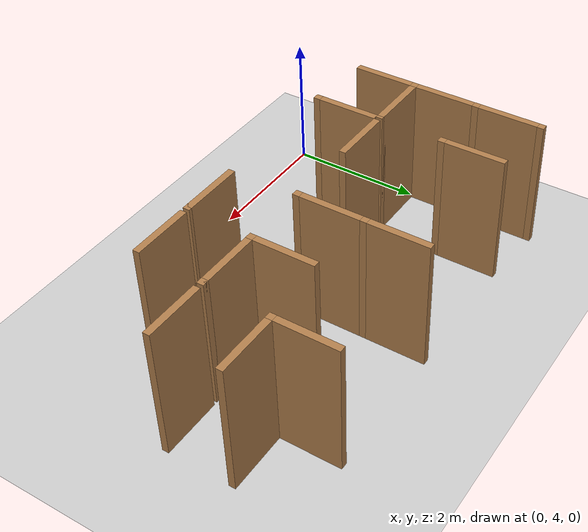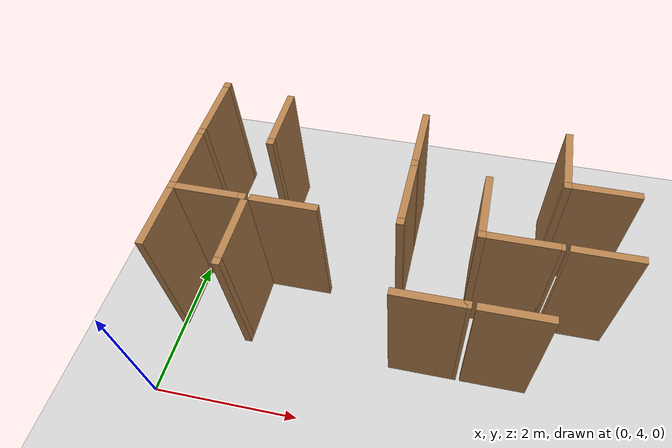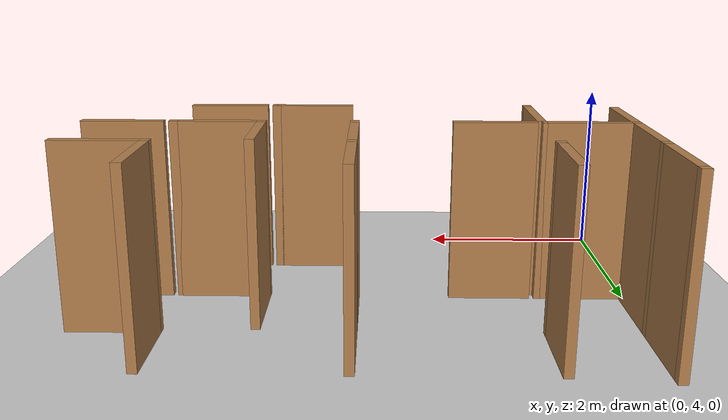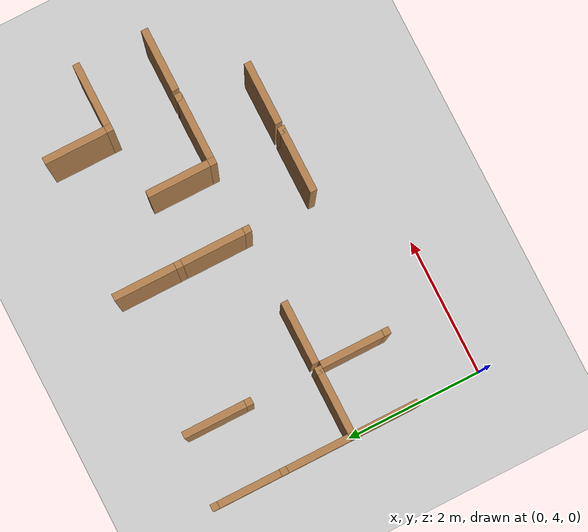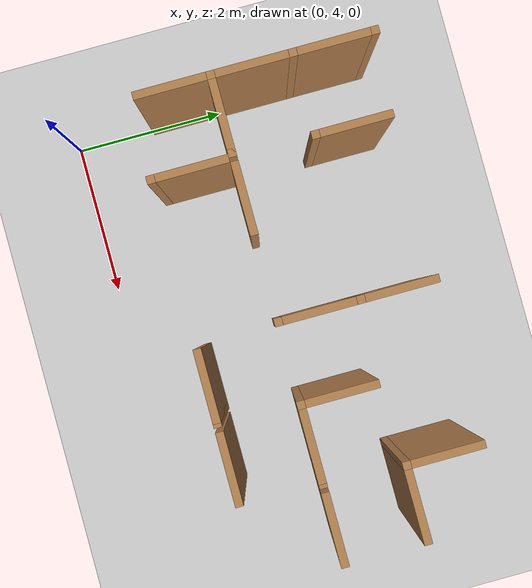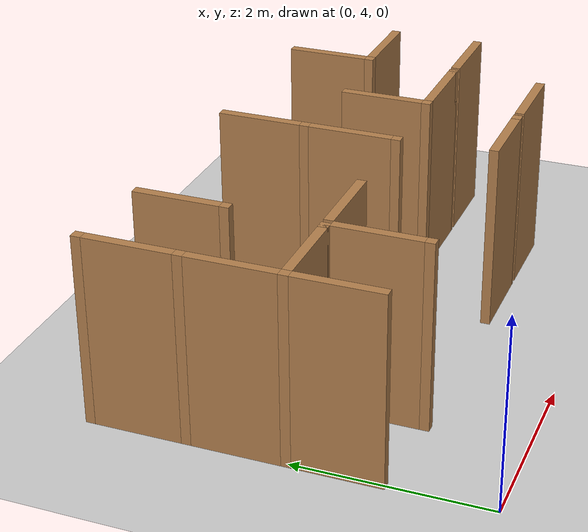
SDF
<sdf version="1.6">
 <world name="default">
  <include><uri>model://sun</uri></include>
  <model name="ground_plane">
   <static>true</static>
   <link name="link">
    <collision name="collision"><geometry><plane><size>12.0 12.0</size></plane></geometry></collision>
    <visual name="visual">
     <cast_shadows>false</cast_shadows>
     <geometry><plane><size>12.0 12.0</size></plane></geometry>
     <material>
      <script><uri>file://media/materials/scripts/gazebo.material</uri><name>Gazebo/Grey</name></script>
     </material>
    </visual>
   </link>
   <pose>6.0 6.0 0 0 0 0</pose>
  </model>
  <model name="vwall_5_0">
   <pose>0.0 5.5 1.0 0 0 0</pose>
   <link name="link">
    <collision name="collision"><geometry><box><size>0.1 0.9 2</size></box></geometry></collision>
    <visual name="visual">
     <geometry><box><size>0.1 0.9 2</size></box></geometry>
     <material>
      <script><uri>file://media/materials/scripts/gazebo.material</uri><name>Gazebo/Wood</name></script>
     </material>
    </visual>
   </link>
  </model>
  <model name="vwall_5_1">
   <pose>1.0 5.5 1.0 0 0 0</pose>
   <link name="link">
    <collision name="collision"><geometry><box><size>0.1 0.9 2</size></box></geometry></collision>
    <visual name="visual">
     <geometry><box><size>0.1 0.9 2</size></box></geometry>
     <material>
      <script><uri>file://media/materials/scripts/gazebo.material</uri><name>Gazebo/Wood</name></script>
     </material>
    </visual>
   </link>
  </model>
  <model name="joint_1.0_5.0">
   <pose>1.0 5.0 1.0 0 0 0</pose>
   <link name="link">
    <collision name="collision"><geometry><box><size>0.1 0.1 2</size></box></geometry></collision>
    <visual name="visual">
     <geometry><box><size>0.1 0.1 2</size></box></geometry>
     <material>
      <script><uri>file://media/materials/scripts/gazebo.material</uri><name>Gazebo/Wood</name></script>
     </material>
    </visual>
   </link>
  </model>
  <model name="vwall_6_0">
   <pose>0.0 6.5 1.0 0 0 0</pose>
   <link name="link">
    <collision name="collision"><geometry><box><size>0.1 0.9 2</size></box></geometry></collision>
    <visual name="visual">
     <geometry><box><size>0.1 0.9 2</size></box></geometry>
     <material>
      <script><uri>file://media/materials/scripts/gazebo.material</uri><name>Gazebo/Wood</name></script>
     </material>
    </visual>
   </link>
  </model>
  <model name="joint_0.0_6.0">
   <pose>0.0 6.0 1.0 0 0 0</pose>
   <link name="link">
    <collision name="collision"><geometry><box><size>0.1 0.1 2</size></box></geometry></collision>
    <visual name="visual">
     <geometry><box><size>0.1 0.1 2</size></box></geometry>
     <material>
      <script><uri>file://media/materials/scripts/gazebo.material</uri><name>Gazebo/Wood</name></script>
     </material>
    </visual>
   </link>
  </model>
  <model name="vwall_6_3">
   <pose>3.0 6.5 1.0 0 0 0</pose>
   <link name="link">
    <collision name="collision"><geometry><box><size>0.1 0.9 2</size></box></geometry></collision>
    <visual name="visual">
     <geometry><box><size>0.1 0.9 2</size></box></geometry>
     <material>
      <script><uri>file://media/materials/scripts/gazebo.material</uri><name>Gazebo/Wood</name></script>
     </material>
    </visual>
   </link>
  </model>
  <model name="joint_3.0_6.0">
   <pose>3.0 6.0 1.0 0 0 0</pose>
   <link name="link">
    <collision name="collision"><geometry><box><size>0.1 0.1 2</size></box></geometry></collision>
    <visual name="visual">
     <geometry><box><size>0.1 0.1 2</size></box></geometry>
     <material>
      <script><uri>file://media/materials/scripts/gazebo.material</uri><name>Gazebo/Wood</name></script>
     </material>
    </visual>
   </link>
  </model>
  <model name="vwall_6_4">
   <pose>4.0 6.5 1.0 0 0 0</pose>
   <link name="link">
    <collision name="collision"><geometry><box><size>0.1 0.9 2</size></box></geometry></collision>
    <visual name="visual">
     <geometry><box><size>0.1 0.9 2</size></box></geometry>
     <material>
      <script><uri>file://media/materials/scripts/gazebo.material</uri><name>Gazebo/Wood</name></script>
     </material>
    </visual>
   </link>
  </model>
  <model name="joint_4.0_6.0">
   <pose>4.0 6.0 1.0 0 0 0</pose>
   <link name="link">
    <collision name="collision"><geometry><box><size>0.1 0.1 2</size></box></geometry></collision>
    <visual name="visual">
     <geometry><box><size>0.1 0.1 2</size></box></geometry>
     <material>
      <script><uri>file://media/materials/scripts/gazebo.material</uri><name>Gazebo/Wood</name></script>
     </material>
    </visual>
   </link>
  </model>
  <model name="vwall_7_0">
   <pose>0.0 7.5 1.0 0 0 0</pose>
   <link name="link">
    <collision name="collision"><geometry><box><size>0.1 0.9 2</size></box></geometry></collision>
    <visual name="visual">
     <geometry><box><size>0.1 0.9 2</size></box></geometry>
     <material>
      <script><uri>file://media/materials/scripts/gazebo.material</uri><name>Gazebo/Wood</name></script>
     </material>
    </visual>
   </link>
  </model>
  <model name="joint_0.0_7.0">
   <pose>0.0 7.0 1.0 0 0 0</pose>
   <link name="link">
    <collision name="collision"><geometry><box><size>0.1 0.1 2</size></box></geometry></collision>
    <visual name="visual">
     <geometry><box><size>0.1 0.1 2</size></box></geometry>
     <material>
      <script><uri>file://media/materials/scripts/gazebo.material</uri><name>Gazebo/Wood</name></script>
     </material>
    </visual>
   </link>
  </model>
  <model name="vwall_7_1">
   <pose>1.0 7.5 1.0 0 0 0</pose>
   <link name="link">
    <collision name="collision"><geometry><box><size>0.1 0.9 2</size></box></geometry></collision>
    <visual name="visual">
     <geometry><box><size>0.1 0.9 2</size></box></geometry>
     <material>
      <script><uri>file://media/materials/scripts/gazebo.material</uri><name>Gazebo/Wood</name></script>
     </material>
    </visual>
   </link>
  </model>
  <model name="joint_1.0_7.0">
   <pose>1.0 7.0 1.0 0 0 0</pose>
   <link name="link">
    <collision name="collision"><geometry><box><size>0.1 0.1 2</size></box></geometry></collision>
    <visual name="visual">
     <geometry><box><size>0.1 0.1 2</size></box></geometry>
     <material>
      <script><uri>file://media/materials/scripts/gazebo.material</uri><name>Gazebo/Wood</name></script>
     </material>
    </visual>
   </link>
  </model>
  <model name="vwall_7_3">
   <pose>3.0 7.5 1.0 0 0 0</pose>
   <link name="link">
    <collision name="collision"><geometry><box><size>0.1 0.9 2</size></box></geometry></collision>
    <visual name="visual">
     <geometry><box><size>0.1 0.9 2</size></box></geometry>
     <material>
      <script><uri>file://media/materials/scripts/gazebo.material</uri><name>Gazebo/Wood</name></script>
     </material>
    </visual>
   </link>
  </model>
  <model name="joint_3.0_7.0">
   <pose>3.0 7.0 1.0 0 0 0</pose>
   <link name="link">
    <collision name="collision"><geometry><box><size>0.1 0.1 2</size></box></geometry></collision>
    <visual name="visual">
     <geometry><box><size>0.1 0.1 2</size></box></geometry>
     <material>
      <script><uri>file://media/materials/scripts/gazebo.material</uri><name>Gazebo/Wood</name></script>
     </material>
    </visual>
   </link>
  </model>
  <model name="vwall_7_5">
   <pose>5.0 7.5 1.0 0 0 0</pose>
   <link name="link">
    <collision name="collision"><geometry><box><size>0.1 0.9 2</size></box></geometry></collision>
    <visual name="visual">
     <geometry><box><size>0.1 0.9 2</size></box></geometry>
     <material>
      <script><uri>file://media/materials/scripts/gazebo.material</uri><name>Gazebo/Wood</name></script>
     </material>
    </visual>
   </link>
  </model>
  <model name="joint_5.0_7.0">
   <pose>5.0 7.0 1.0 0 0 0</pose>
   <link name="link">
    <collision name="collision"><geometry><box><size>0.1 0.1 2</size></box></geometry></collision>
    <visual name="visual">
     <geometry><box><size>0.1 0.1 2</size></box></geometry>
     <material>
      <script><uri>file://media/materials/scripts/gazebo.material</uri><name>Gazebo/Wood</name></script>
     </material>
    </visual>
   </link>
  </model>
  <model name="joint_0.0_8.0">
   <pose>0.0 8.0 1.0 0 0 0</pose>
   <link name="link">
    <collision name="collision"><geometry><box><size>0.1 0.1 2</size></box></geometry></collision>
    <visual name="visual">
     <geometry><box><size>0.1 0.1 2</size></box></geometry>
     <material>
      <script><uri>file://media/materials/scripts/gazebo.material</uri><name>Gazebo/Wood</name></script>
     </material>
    </visual>
   </link>
  </model>
  <model name="hwall_5_3">
   <pose>3.5 5.0 1.0 0 0 0</pose>
   <link name="link">
    <collision name="collision"><geometry><box><size>0.9 0.1 2</size></box></geometry></collision>
    <visual name="visual">
     <geometry><box><size>0.9 0.1 2</size></box></geometry>
     <material>
      <script><uri>file://media/materials/scripts/gazebo.material</uri><name>Gazebo/Wood</name></script>
     </material>
    </visual>
   </link>
  </model>
  <model name="joint_3.95_5.0">
   <pose>3.95 5.0 1.0 0 0 0</pose>
   <link name="link">
    <collision name="collision"><geometry><box><size>0.1 0.1 2</size></box></geometry></collision>
    <visual name="visual">
     <geometry><box><size>0.1 0.1 2</size></box></geometry>
     <material>
      <script><uri>file://media/materials/scripts/gazebo.material</uri><name>Gazebo/Wood</name></script>
     </material>
    </visual>
   </link>
  </model>
  <model name="hwall_5_4">
   <pose>4.5 5.0 1.0 0 0 0</pose>
   <link name="link">
    <collision name="collision"><geometry><box><size>0.9 0.1 2</size></box></geometry></collision>
    <visual name="visual">
     <geometry><box><size>0.9 0.1 2</size></box></geometry>
     <material>
      <script><uri>file://media/materials/scripts/gazebo.material</uri><name>Gazebo/Wood</name></script>
     </material>
    </visual>
   </link>
  </model>
  <model name="hwall_6_0">
   <pose>0.5 6.0 1.0 0 0 0</pose>
   <link name="link">
    <collision name="collision"><geometry><box><size>0.9 0.1 2</size></box></geometry></collision>
    <visual name="visual">
     <geometry><box><size>0.9 0.1 2</size></box></geometry>
     <material>
      <script><uri>file://media/materials/scripts/gazebo.material</uri><name>Gazebo/Wood</name></script>
     </material>
    </visual>
   </link>
  </model>
  <model name="joint_0.95_6.0">
   <pose>0.95 6.0 1.0 0 0 0</pose>
   <link name="link">
    <collision name="collision"><geometry><box><size>0.1 0.1 2</size></box></geometry></collision>
    <visual name="visual">
     <geometry><box><size>0.1 0.1 2</size></box></geometry>
     <material>
      <script><uri>file://media/materials/scripts/gazebo.material</uri><name>Gazebo/Wood</name></script>
     </material>
    </visual>
   </link>
  </model>
  <model name="hwall_6_1">
   <pose>1.5 6.0 1.0 0 0 0</pose>
   <link name="link">
    <collision name="collision"><geometry><box><size>0.9 0.1 2</size></box></geometry></collision>
    <visual name="visual">
     <geometry><box><size>0.9 0.1 2</size></box></geometry>
     <material>
      <script><uri>file://media/materials/scripts/gazebo.material</uri><name>Gazebo/Wood</name></script>
     </material>
    </visual>
   </link>
  </model>
  <model name="hwall_6_4">
   <pose>4.5 6.0 1.0 0 0 0</pose>
   <link name="link">
    <collision name="collision"><geometry><box><size>0.9 0.1 2</size></box></geometry></collision>
    <visual name="visual">
     <geometry><box><size>0.9 0.1 2</size></box></geometry>
     <material>
      <script><uri>file://media/materials/scripts/gazebo.material</uri><name>Gazebo/Wood</name></script>
     </material>
    </visual>
   </link>
  </model>
  <model name="joint_4.95_6.0">
   <pose>4.95 6.0 1.0 0 0 0</pose>
   <link name="link">
    <collision name="collision"><geometry><box><size>0.1 0.1 2</size></box></geometry></collision>
    <visual name="visual">
     <geometry><box><size>0.1 0.1 2</size></box></geometry>
     <material>
      <script><uri>file://media/materials/scripts/gazebo.material</uri><name>Gazebo/Wood</name></script>
     </material>
    </visual>
   </link>
  </model>
  <model name="hwall_6_5">
   <pose>5.5 6.0 1.0 0 0 0</pose>
   <link name="link">
    <collision name="collision"><geometry><box><size>0.9 0.1 2</size></box></geometry></collision>
    <visual name="visual">
     <geometry><box><size>0.9 0.1 2</size></box></geometry>
     <material>
      <script><uri>file://media/materials/scripts/gazebo.material</uri><name>Gazebo/Wood</name></script>
     </material>
    </visual>
   </link>
  </model>
  <model name="hwall_7_5">
   <pose>5.5 7.0 1.0 0 0 0</pose>
   <link name="link">
    <collision name="collision"><geometry><box><size>0.9 0.1 2</size></box></geometry></collision>
    <visual name="visual">
     <geometry><box><size>0.9 0.1 2</size></box></geometry>
     <material>
      <script><uri>file://media/materials/scripts/gazebo.material</uri><name>Gazebo/Wood</name></script>
     </material>
    </visual>
   </link>
  </model>
 </world>
</sdf>
